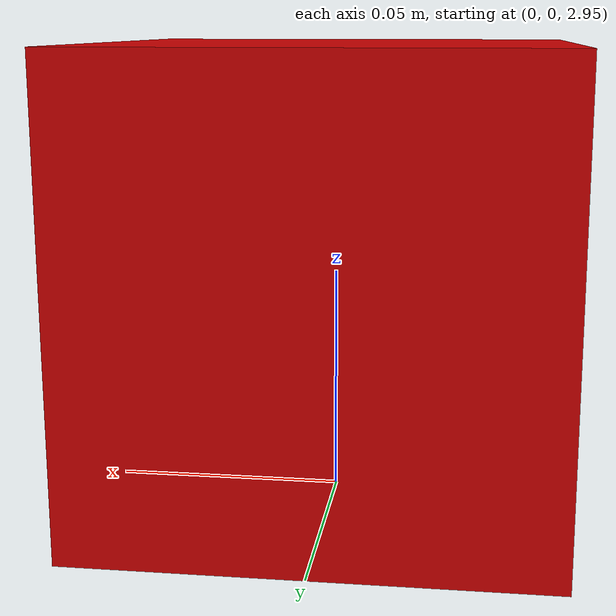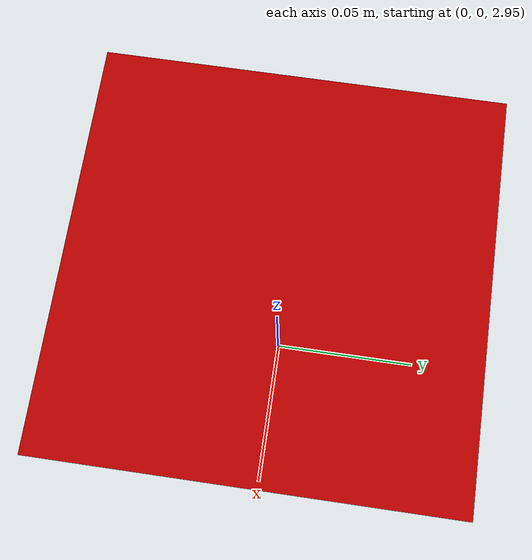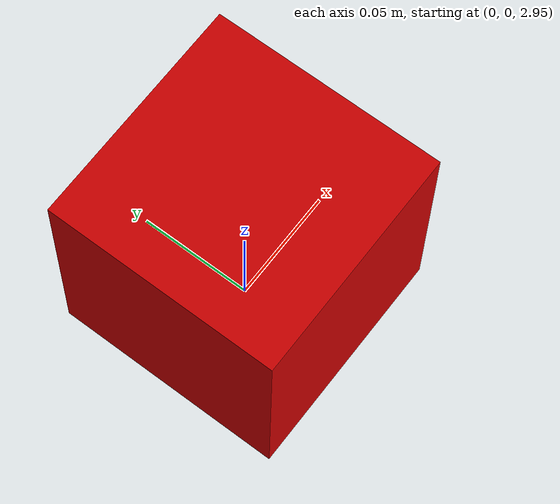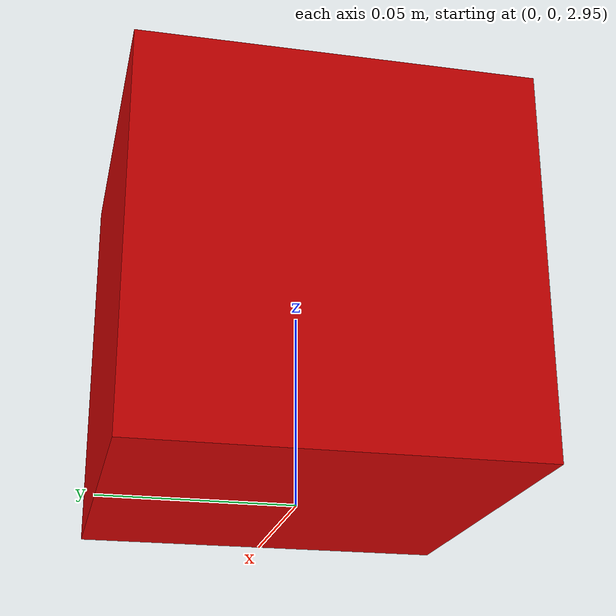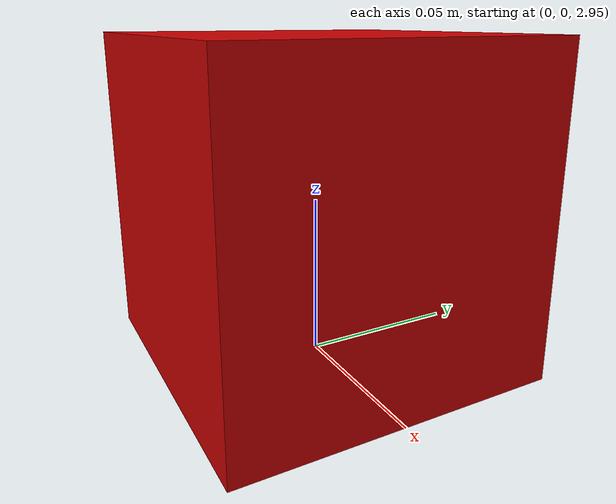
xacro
<?xml version = "1.0"?>
<robot name = "camera" xmlns:xacro = "http://ros.org/wiki/xacro">

<xacro:arg name = "drone_height" default = "3" />

<material name="red">
  <color rgba="0.8 0 0 1"/>
</material>

<link name = "world">
	<origin xyz = "0 0 0"/>
</link>

<joint name = "camera_joint" type = "floating">
	<parent link = "world"/>
	<child link = "drone_link"/>
	<origin xyz = "0 0 $(arg drone_height)" rpy = "0.0 ${pi / 2} ${pi / 2}"/>
</joint>

<link name = "drone_link">
    <collision>
      <origin xyz = "0 0 0" rpy = "0 0 0"/>
      <geometry>
    <box size="0.10 0.10 0.10"/>
      </geometry>
    </collision>

    <visual>
      <origin xyz = "0 0 0" rpy = "0 0 0"/>
      <geometry>
    <box size = "0.10 0.10 0.10"/>
      </geometry>
      <material name = "red"/>
    </visual>

    <inertial>
      <mass value = "1e-5" />
      <origin xyz = "0 0 0" rpy = "0 0 0"/>
      <inertia ixx = "1e-6" ixy = "0" ixz = "0" iyy = "1e-6" iyz = "0" izz = "1e-6" />
    </inertial>
  </link>

  <gazebo reference = "drone_link">
    <material>Gazebo/Red</material>
    <turnGravityOff>true</turnGravityOff>
    <sensor type = "camera" name = "camera">
      <update_rate>30.0</update_rate>
      <camera name = "head">
        <horizontal_fov>1.3962634</horizontal_fov>
        <image>
          <width>800</width>
          <height>800</height>
          <format>R8G8B8</format>
        </image>
        <clip>
          <near>0.02</near>
          <far>300</far>
        </clip>
        <noise>
          <type>gaussian</type>
          <!-- Noise is sampled independently per pixel on each frame.
               That pixel's noise value is added to each of its color
               channels, which at that point lie in the range [0,1]. -->
          <mean>0.0</mean>
          <stddev>0.0</stddev>
        </noise>
      </camera>
      <plugin name = "camera_controller" filename = "libgazebo_ros_camera.so">
        <alwaysOn>true</alwaysOn>
        <updateRate>0.0</updateRate>
        <cameraName>camera</cameraName>
        <imageTopicName>image_raw</imageTopicName>
        <cameraInfoTopicName>camera_info</cameraInfoTopicName>
        <frameName>drone_link</frameName>
        <hackBaseline>0.07</hackBaseline>
        <distortionK1>0.0</distortionK1>
        <distortionK2>0.0</distortionK2>
        <distortionK3>0.0</distortionK3>
        <distortionT1>0.0</distortionT1>
        <distortionT2>0.0</distortionT2>
      </plugin>
    </sensor>
  </gazebo>
  <gazebo>
    <plugin name = "drone_controller" filename = "libgazebo_ros_planar_move.so">
        <commandTopic>cmd_vel</commandTopic>
        <odometryTopic>odom</odometryTopic>
        <odometryFrame>drone_odom</odometryFrame>
        <odometryRate>20.0</odometryRate>
        <robotBaseFrame>drone_link</robotBaseFrame>
      </plugin>
  </gazebo>
</robot>
